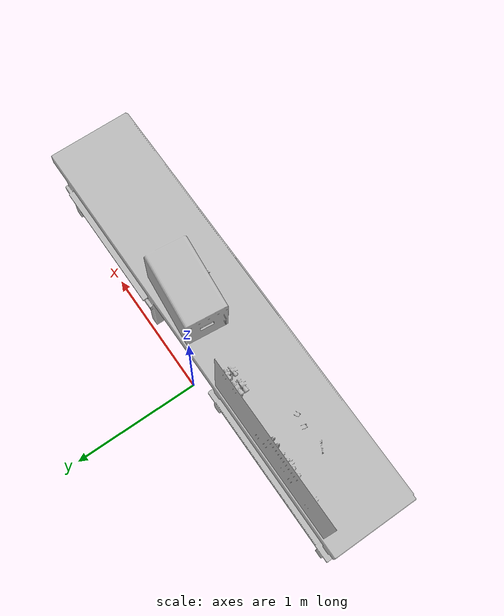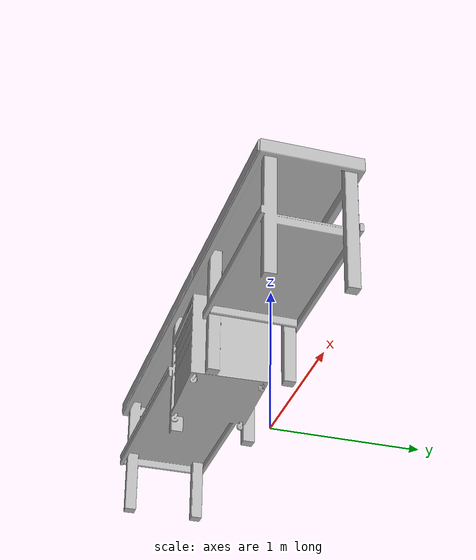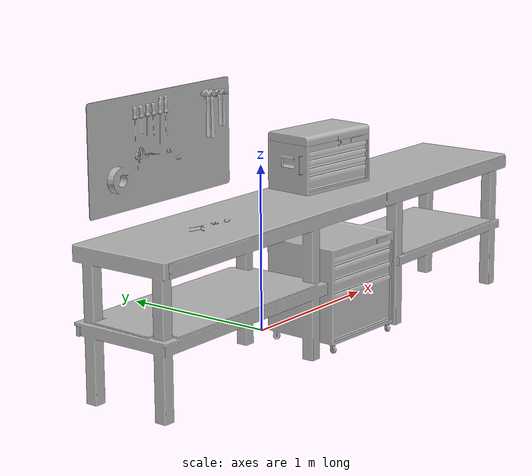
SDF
<?xml version="1.0" ?>
<sdf version="1.5">
  <model name="Bancada">
    <static>true</static>
    <link name="link">
      <collision name="collision">
        <geometry>
            <mesh>
                <uri>model://bancada/meshes/bancada.stl</uri>
                <scale>1 1 1</scale>
            </mesh>
        </geometry>
      </collision>
      <visual name="visual">
        <geometry>
          <mesh>
            <uri>model://bancada/meshes/bancada.stl</uri>
            <scale>1 1 1</scale>
          </mesh>
        </geometry>
      </visual>
    </link>
    <gazebo reference="link">
      <material>Gazebo/White</material>
    </gazebo>

  </model>
</sdf>
